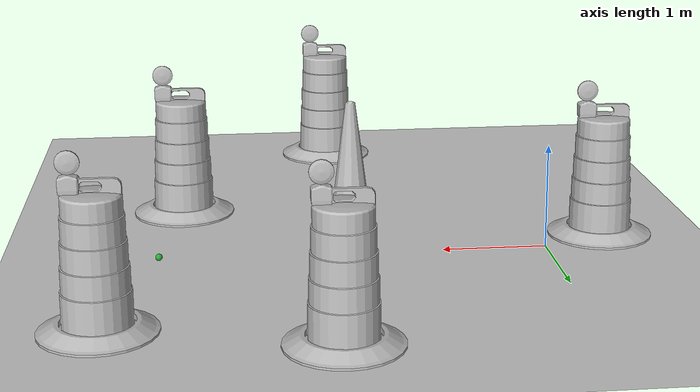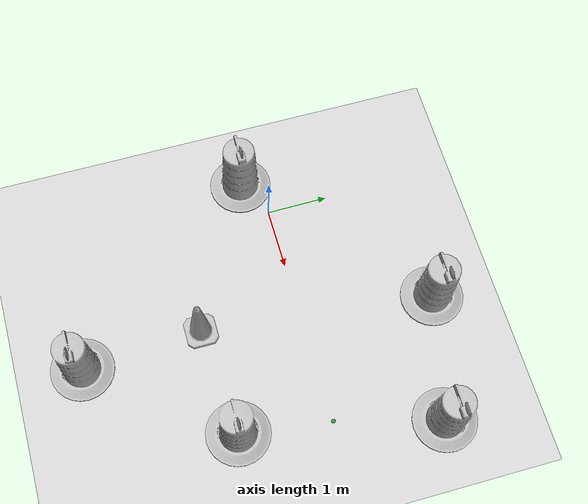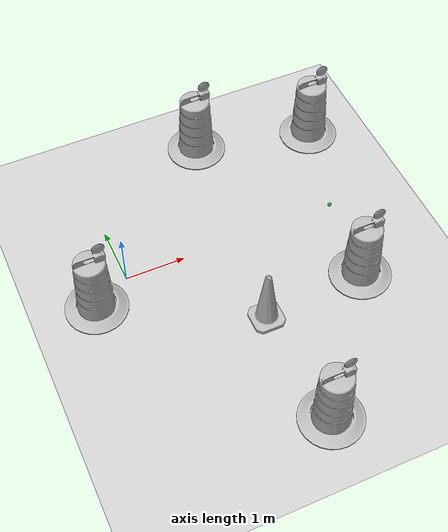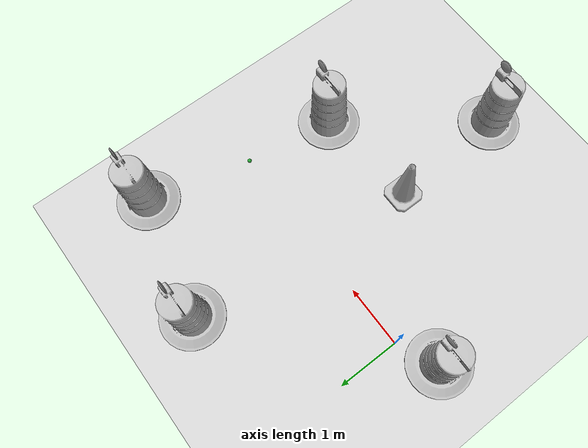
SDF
<sdf version="1.7">
 <world name="default">
  <light name="sun" type="directional">
   <pose>0 0 10 0 -0 0</pose>
   <diffuse>0.8 0.8 0.8 1</diffuse>
   <specular>0.2 0.2 0.2 1</specular>
   <attenuation>
    <range>1000</range>
    <constant>0.9</constant>
    <linear>0.01</linear>
    <quadratic>0.001</quadratic>
   </attenuation>
   <direction>-0.5 0.1 -0.9</direction>
   <spot><inner_angle>0</inner_angle><outer_angle>0</outer_angle><falloff>0</falloff></spot>
  </light>
  <model name="ground_plane">
   <static>1</static>
   <link name="link">
    <collision name="collision">
     <geometry><plane><normal>0 0 1</normal><size>100 100</size></plane></geometry>
     <surface>
      <contact><collide_bitmask>65535</collide_bitmask></contact>
      <friction><ode><mu>100</mu><mu2>50</mu2></ode></friction>
     </surface>
    </collision>
    <visual name="visual">
     <cast_shadows>0</cast_shadows>
     <geometry><plane><normal>0 0 1</normal><size>100 100</size></plane></geometry>
     <material>
      <script><uri>file://media/materials/scripts/gazebo.material</uri><name>Gazebo/Grey</name></script>
     </material>
    </visual>
   </link>
  </model>
  <gravity>0 0 -9.8</gravity>
  <magnetic_field>6e-06 2.3e-05 -4.2e-05</magnetic_field>
  <atmosphere type="adiabatic"/>
  <physics type="ode">
   <max_step_size>0.001</max_step_size>
   <real_time_factor>1</real_time_factor>
   <real_time_update_rate>1000</real_time_update_rate>
  </physics>
  <scene><ambient>0.4 0.4 0.4 1</ambient><background>0.7 0.7 0.7 1</background><shadows>1</shadows></scene>
  <audio><device>default</device></audio>
  <spherical_coordinates>
   <surface_model>EARTH_WGS84</surface_model>
   <latitude_deg>0</latitude_deg>
   <longitude_deg>0</longitude_deg>
   <elevation>0</elevation>
   <heading_deg>0</heading_deg>
  </spherical_coordinates>
  <model name="Construction Barrel">
   <link name="link">
    <inertial>
     <pose>0 0 0.4 0 -0 0</pose>
     <mass>500</mass>
     <inertia><ixx>51.2096</ixx><iyy>51.2096</iyy><izz>25</izz><ixy>0</ixy><ixz>0</ixz><iyz>0</iyz></inertia>
    </inertial>
    <collision name="collision">
     <geometry><mesh><uri>model://construction_barrel/meshes/construction_barrel.dae</uri></mesh></geometry>
    </collision>
    <visual name="visual">
     <geometry><mesh><uri>model://construction_barrel/meshes/construction_barrel.dae</uri></mesh></geometry>
    </visual>
   </link>
   <pose>-0.615198 -0.324914 -2e-06 4e-06 7e-06 -2.7e-05</pose>
  </model>
  <model name="Construction Cone">
   <link name="link">
    <collision name="collision">
     <geometry>
      <mesh><scale>10 10 10</scale><uri>model://construction_cone/meshes/construction_cone.dae</uri></mesh>
     </geometry>
    </collision>
    <visual name="visual">
     <geometry>
      <mesh><scale>10 10 10</scale><uri>model://construction_cone/meshes/construction_cone.dae</uri></mesh>
     </geometry>
    </visual>
    <inertial>
     <inertia><ixx>1</ixx><ixy>0</ixy><ixz>0</ixz><iyy>1</iyy><iyz>0</iyz><izz>1</izz></inertia>
     <mass>1</mass>
    </inertial>
   </link>
   <pose>1.73586 -1.603 -0 0 -1e-06 0</pose>
  </model>
  <model name="Construction Barrel_0">
   <link name="link">
    <inertial>
     <pose>0 0 0.4 0 -0 0</pose>
     <mass>500</mass>
     <inertia><ixx>51.2096</ixx><iyy>51.2096</iyy><izz>25</izz><ixy>0</ixy><ixz>0</ixz><iyz>0</iyz></inertia>
    </inertial>
    <collision name="collision">
     <geometry><mesh><uri>model://construction_barrel/meshes/construction_barrel.dae</uri></mesh></geometry>
    </collision>
    <visual name="visual">
     <geometry><mesh><uri>model://construction_barrel/meshes/construction_barrel.dae</uri></mesh></geometry>
    </visual>
   </link>
   <pose>3.47918 -1.45261 -0 0 0 -2.8e-05</pose>
  </model>
  <model name="Construction Barrel_0_clone">
   <link name="link">
    <inertial>
     <pose>0 0 0.4 0 -0 0</pose>
     <mass>500</mass>
     <inertia><ixx>51.2096</ixx><iyy>51.2096</iyy><izz>25</izz><ixy>0</ixy><ixz>0</ixz><iyz>0</iyz></inertia>
    </inertial>
    <collision name="collision">
     <geometry><mesh><uri>model://construction_barrel/meshes/construction_barrel.dae</uri></mesh></geometry>
    </collision>
    <visual name="visual">
     <geometry><mesh><uri>model://construction_barrel/meshes/construction_barrel.dae</uri></mesh></geometry>
    </visual>
   </link>
   <pose>2.14198 2.14863 -0 0 0 -2.7e-05</pose>
  </model>
  <model name="Construction Barrel_0_clone_0">
   <link name="link">
    <inertial>
     <pose>0 0 0.4 0 -0 0</pose>
     <mass>500</mass>
     <inertia><ixx>51.2096</ixx><iyy>51.2096</iyy><izz>25</izz><ixy>0</ixy><ixz>0</ixz><iyz>0</iyz></inertia>
    </inertial>
    <collision name="collision">
     <geometry><mesh><uri>model://construction_barrel/meshes/construction_barrel.dae</uri></mesh></geometry>
    </collision>
    <visual name="visual">
     <geometry><mesh><uri>model://construction_barrel/meshes/construction_barrel.dae</uri></mesh></geometry>
    </visual>
   </link>
   <pose>4.12213 1.67355 -0 0 0 -2.7e-05</pose>
  </model>
  <model name="Construction Barrel_0_clone_1">
   <link name="link">
    <inertial>
     <pose>0 0 0.4 0 -0 0</pose>
     <mass>500</mass>
     <inertia><ixx>51.2096</ixx><iyy>51.2096</iyy><izz>25</izz><ixy>0</ixy><ixz>0</ixz><iyz>0</iyz></inertia>
    </inertial>
    <collision name="collision">
     <geometry><mesh><uri>model://construction_barrel/meshes/construction_barrel.dae</uri></mesh></geometry>
    </collision>
    <visual name="visual">
     <geometry><mesh><uri>model://construction_barrel/meshes/construction_barrel.dae</uri></mesh></geometry>
    </visual>
   </link>
   <pose>1.84906 -3.55431 -0 0 0 -2.7e-05</pose>
  </model>
  <model name="test_ball">
   <link name="link">
    <inertial>
     <mass>1</mass>
     <inertia><ixx>0.1</ixx><ixy>0</ixy><ixz>0</ixz><iyy>0.1</iyy><iyz>0</iyz><izz>0.1</izz></inertia>
    </inertial>
    <visual name="visual">
     <geometry><sphere><radius>0.033</radius></sphere></geometry>
     <material>
      <script><name>Gazebo/Green</name><uri>file://media/materials/scripts/gazebo.material</uri></script>
      <shader type="pixel"><normal_map>__default__</normal_map></shader>
      <ambient>0 1 0 1</ambient>
      <diffuse>0 1 0 1</diffuse>
      <specular>0.1 0.1 0.1 1</specular>
      <emissive>0 0 0 1</emissive>
     </material>
    </visual>
    <collision name="collision">
     <geometry><sphere><radius>0.033</radius></sphere></geometry>
     <surface>
      <friction>
       <ode><mu>1</mu><mu2>1</mu2><fdir1>0 0 0</fdir1><slip1>0</slip1><slip2>0</slip2></ode>
       <torsional>
        <coefficient>1</coefficient>
        <patch_radius>0</patch_radius>
        <surface_radius>0</surface_radius>
        <use_patch_radius>1</use_patch_radius>
        <ode><slip>0</slip></ode>
       </torsional>
      </friction>
      <bounce><restitution_coefficient>0</restitution_coefficient><threshold>1e+06</threshold></bounce>
      <contact>
       <collide_without_contact>0</collide_without_contact>
       <collide_without_contact_bitmask>1</collide_without_contact_bitmask>
       <collide_bitmask>1</collide_bitmask>
       <ode>
        <soft_cfm>0</soft_cfm>
        <soft_erp>0.2</soft_erp>
        <kp>1e+13</kp>
        <kd>1</kd>
        <max_vel>0.01</max_vel>
        <min_depth>0</min_depth>
       </ode>
       <bullet>
        <split_impulse>1</split_impulse>
        <split_impulse_penetration_threshold>-0.01</split_impulse_penetration_threshold>
        <soft_cfm>0</soft_cfm>
        <soft_erp>0.2</soft_erp>
        <kp>1e+13</kp>
        <kd>1</kd>
       </bullet>
      </contact>
     </surface>
    </collision>
   </link>
   <static>0</static>
   <pose>3.6901 0.008391 0.033 0 -0 0</pose>
  </model>
 </world>
</sdf>
